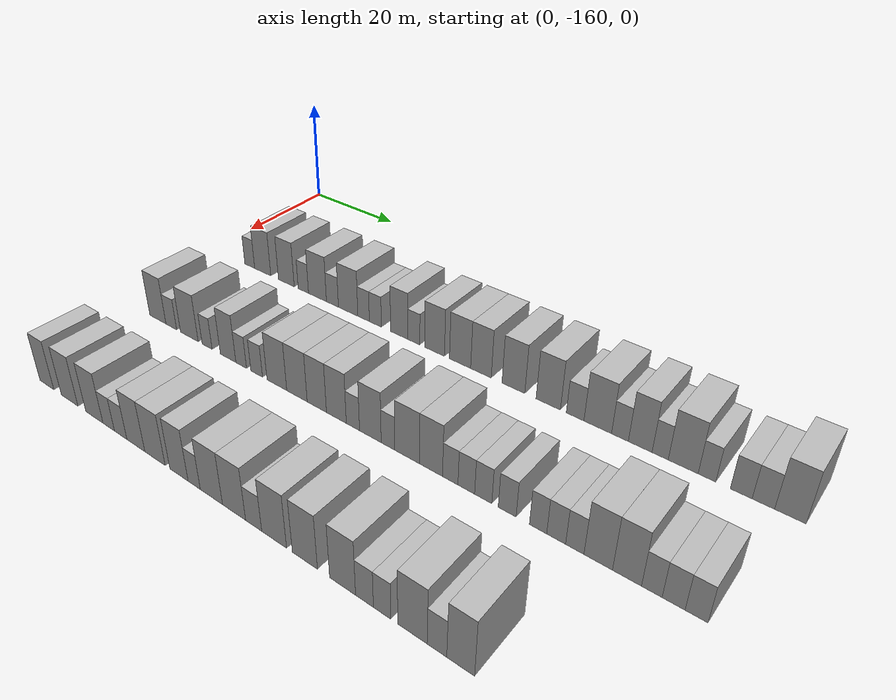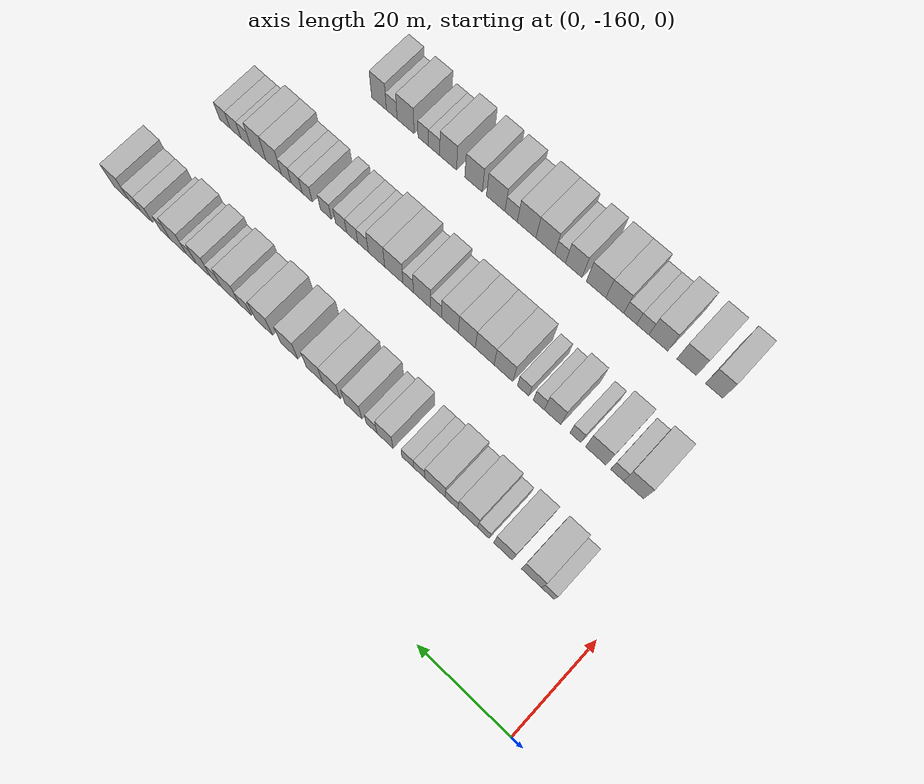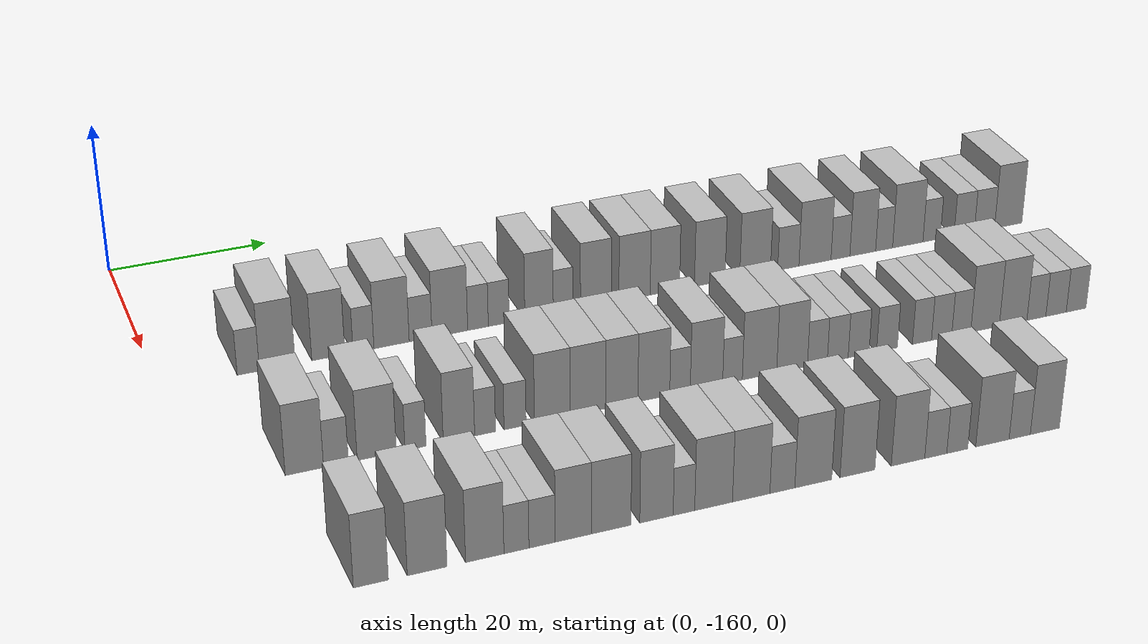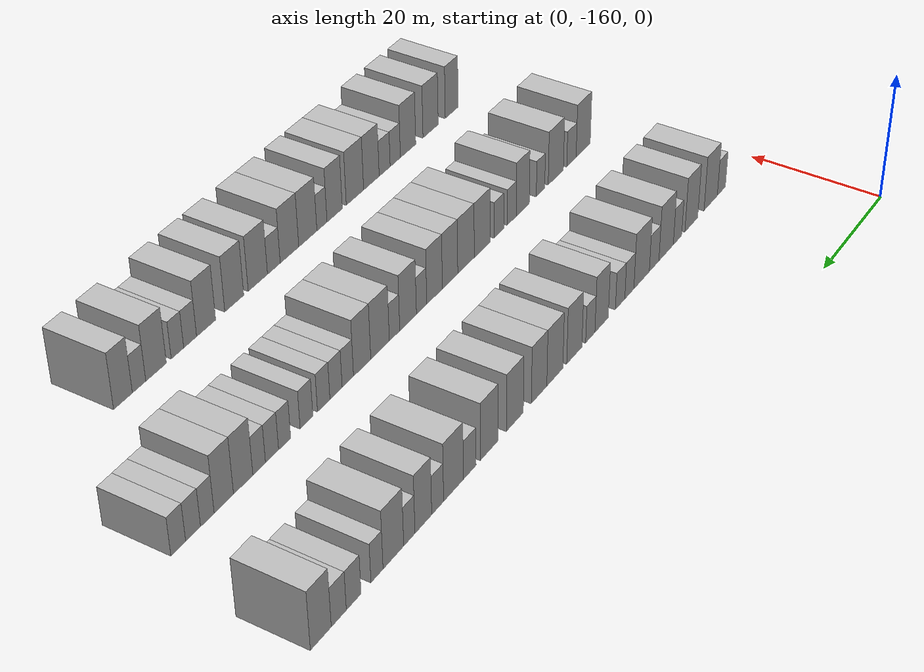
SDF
<sdf version="1.6">
 <world name="default">
  <model name="building_25">
   <static>1</static>
   <pose>25.0000 -149.6056 0 0.000000 0.000000 0.000000</pose>
   <link name="link">
    <pose>0 0 3.00 0 0 0</pose>
    <collision name="collision"><geometry><box><size>10.0000 2.6451 6.0000</size></box></geometry></collision>
    <visual name="visual">
     <cast_shadows>0</cast_shadows>
     <geometry><box><size>10.0000 2.6451 6.0000</size></box></geometry>
     <material>
      <script>
       <uri>model://HANNAS_wall/materials/scripts</uri>
       <uri>model://HANNAS_wall/materials/textures</uri>
       <name>vrc/HANNAS_wall</name>
      </script>
     </material>
    </visual>
   </link>
  </model>
  <model name="building_26">
   <static>1</static>
   <pose>25.0000 -146.1416 0 0.000000 0.000000 0.000000</pose>
   <link name="link">
    <pose>0 0 4.50 0 0 0</pose>
    <collision name="collision"><geometry><box><size>10.0000 4.2828 9.0000</size></box></geometry></collision>
    <visual name="visual">
     <cast_shadows>0</cast_shadows>
     <geometry><box><size>10.0000 4.2828 9.0000</size></box></geometry>
     <material>
      <script>
       <uri>model://HANNAS_wall/materials/scripts</uri>
       <uri>model://HANNAS_wall/materials/textures</uri>
       <name>vrc/HANNAS_wall</name>
      </script>
     </material>
    </visual>
   </link>
  </model>
  <model name="building_27">
   <static>1</static>
   <pose>25.0000 -139.9918 0 0.000000 0.000000 0.000000</pose>
   <link name="link">
    <pose>0 0 4.50 0 0 0</pose>
    <collision name="collision"><geometry><box><size>10.0000 4.0168 9.0000</size></box></geometry></collision>
    <visual name="visual">
     <cast_shadows>0</cast_shadows>
     <geometry><box><size>10.0000 4.0168 9.0000</size></box></geometry>
     <material>
      <script>
       <uri>model://HANNAS_wall/materials/scripts</uri>
       <uri>model://HANNAS_wall/materials/textures</uri>
       <name>vrc/HANNAS_wall</name>
      </script>
     </material>
    </visual>
   </link>
  </model>
  <model name="building_28">
   <static>1</static>
   <pose>25.0000 -135.7068 0 0.000000 0.000000 0.000000</pose>
   <link name="link">
    <pose>0 0 3.00 0 0 0</pose>
    <collision name="collision"><geometry><box><size>10.0000 2.5531 6.0000</size></box></geometry></collision>
    <visual name="visual">
     <cast_shadows>0</cast_shadows>
     <geometry><box><size>10.0000 2.5531 6.0000</size></box></geometry>
     <material>
      <script>
       <uri>model://HANNAS_wall/materials/scripts</uri>
       <uri>model://HANNAS_wall/materials/textures</uri>
       <name>vrc/HANNAS_wall</name>
      </script>
     </material>
    </visual>
   </link>
  </model>
  <model name="building_29">
   <static>1</static>
   <pose>25.0000 -132.2514 0 0.000000 0.000000 0.000000</pose>
   <link name="link">
    <pose>0 0 4.50 0 0 0</pose>
    <collision name="collision"><geometry><box><size>10.0000 4.3577 9.0000</size></box></geometry></collision>
    <visual name="visual">
     <cast_shadows>0</cast_shadows>
     <geometry><box><size>10.0000 4.3577 9.0000</size></box></geometry>
     <material>
      <script>
       <uri>model://HANNAS_wall/materials/scripts</uri>
       <uri>model://HANNAS_wall/materials/textures</uri>
       <name>vrc/HANNAS_wall</name>
      </script>
     </material>
    </visual>
   </link>
  </model>
  <model name="building_30">
   <static>1</static>
   <pose>25.0000 -128.6530 0 0.000000 0.000000 0.000000</pose>
   <link name="link">
    <pose>0 0 3.00 0 0 0</pose>
    <collision name="collision"><geometry><box><size>10.0000 2.8391 6.0000</size></box></geometry></collision>
    <visual name="visual">
     <cast_shadows>0</cast_shadows>
     <geometry><box><size>10.0000 2.8391 6.0000</size></box></geometry>
     <material>
      <script>
       <uri>model://HANNAS_wall/materials/scripts</uri>
       <uri>model://HANNAS_wall/materials/textures</uri>
       <name>vrc/HANNAS_wall</name>
      </script>
     </material>
    </visual>
   </link>
  </model>
  <model name="building_31">
   <static>1</static>
   <pose>25.0000 -124.9932 0 0.000000 0.000000 0.000000</pose>
   <link name="link">
    <pose>0 0 4.50 0 0 0</pose>
    <collision name="collision"><geometry><box><size>10.0000 4.4804 9.0000</size></box></geometry></collision>
    <visual name="visual">
     <cast_shadows>0</cast_shadows>
     <geometry><box><size>10.0000 4.4804 9.0000</size></box></geometry>
     <material>
      <script>
       <uri>model://HANNAS_wall/materials/scripts</uri>
       <uri>model://HANNAS_wall/materials/textures</uri>
       <name>vrc/HANNAS_wall</name>
      </script>
     </material>
    </visual>
   </link>
  </model>
  <model name="building_32">
   <static>1</static>
   <pose>25.0000 -121.4508 0 0.000000 0.000000 0.000000</pose>
   <link name="link">
    <pose>0 0 3.00 0 0 0</pose>
    <collision name="collision"><geometry><box><size>10.0000 2.6044 6.0000</size></box></geometry></collision>
    <visual name="visual">
     <cast_shadows>0</cast_shadows>
     <geometry><box><size>10.0000 2.6044 6.0000</size></box></geometry>
     <material>
      <script>
       <uri>model://HANNAS_wall/materials/scripts</uri>
       <uri>model://HANNAS_wall/materials/textures</uri>
       <name>vrc/HANNAS_wall</name>
      </script>
     </material>
    </visual>
   </link>
  </model>
  <model name="building_33">
   <static>1</static>
   <pose>25.0000 -118.8197 0 0.000000 0.000000 0.000000</pose>
   <link name="link">
    <pose>0 0 3.00 0 0 0</pose>
    <collision name="collision"><geometry><box><size>10.0000 2.6577 6.0000</size></box></geometry></collision>
    <visual name="visual">
     <cast_shadows>0</cast_shadows>
     <geometry><box><size>10.0000 2.6577 6.0000</size></box></geometry>
     <material>
      <script>
       <uri>model://HANNAS_wall/materials/scripts</uri>
       <uri>model://HANNAS_wall/materials/textures</uri>
       <name>vrc/HANNAS_wall</name>
      </script>
     </material>
    </visual>
   </link>
  </model>
  <model name="building_34">
   <static>1</static>
   <pose>25.0000 -113.6580 0 0.000000 0.000000 0.000000</pose>
   <link name="link">
    <pose>0 0 4.50 0 0 0</pose>
    <collision name="collision"><geometry><box><size>10.0000 3.6656 9.0000</size></box></geometry></collision>
    <visual name="visual">
     <cast_shadows>0</cast_shadows>
     <geometry><box><size>10.0000 3.6656 9.0000</size></box></geometry>
     <material>
      <script>
       <uri>model://HANNAS_wall/materials/scripts</uri>
       <uri>model://HANNAS_wall/materials/textures</uri>
       <name>vrc/HANNAS_wall</name>
      </script>
     </material>
    </visual>
   </link>
  </model>
  <model name="building_35">
   <static>1</static>
   <pose>25.0000 -110.5635 0 0.000000 0.000000 0.000000</pose>
   <link name="link">
    <pose>0 0 3.00 0 0 0</pose>
    <collision name="collision"><geometry><box><size>10.0000 2.5234 6.0000</size></box></geometry></collision>
    <visual name="visual">
     <cast_shadows>0</cast_shadows>
     <geometry><box><size>10.0000 2.5234 6.0000</size></box></geometry>
     <material>
      <script>
       <uri>model://HANNAS_wall/materials/scripts</uri>
       <uri>model://HANNAS_wall/materials/textures</uri>
       <name>vrc/HANNAS_wall</name>
      </script>
     </material>
    </visual>
   </link>
  </model>
  <model name="building_36">
   <static>1</static>
   <pose>25.0000 -106.2881 0 0.000000 0.000000 0.000000</pose>
   <link name="link">
    <pose>0 0 4.50 0 0 0</pose>
    <collision name="collision"><geometry><box><size>10.0000 4.0274 9.0000</size></box></geometry></collision>
    <visual name="visual">
     <cast_shadows>0</cast_shadows>
     <geometry><box><size>10.0000 4.0274 9.0000</size></box></geometry>
     <material>
      <script>
       <uri>model://HANNAS_wall/materials/scripts</uri>
       <uri>model://HANNAS_wall/materials/textures</uri>
       <name>vrc/HANNAS_wall</name>
      </script>
     </material>
    </visual>
   </link>
  </model>
  <model name="building_37">
   <static>1</static>
   <pose>25.0000 -101.2029 0 0.000000 0.000000 0.000000</pose>
   <link name="link">
    <pose>0 0 4.50 0 0 0</pose>
    <collision name="collision"><geometry><box><size>10.0000 4.1431 9.0000</size></box></geometry></collision>
    <visual name="visual">
     <cast_shadows>0</cast_shadows>
     <geometry><box><size>10.0000 4.1431 9.0000</size></box></geometry>
     <material>
      <script>
       <uri>model://HANNAS_wall/materials/scripts</uri>
       <uri>model://HANNAS_wall/materials/textures</uri>
       <name>vrc/HANNAS_wall</name>
      </script>
     </material>
    </visual>
   </link>
  </model>
  <model name="building_38">
   <static>1</static>
   <pose>25.0000 -97.1764 0 0.000000 0.000000 0.000000</pose>
   <link name="link">
    <pose>0 0 4.50 0 0 0</pose>
    <collision name="collision"><geometry><box><size>10.0000 3.9100 9.0000</size></box></geometry></collision>
    <visual name="visual">
     <cast_shadows>0</cast_shadows>
     <geometry><box><size>10.0000 3.9100 9.0000</size></box></geometry>
     <material>
      <script>
       <uri>model://HANNAS_wall/materials/scripts</uri>
       <uri>model://HANNAS_wall/materials/textures</uri>
       <name>vrc/HANNAS_wall</name>
      </script>
     </material>
    </visual>
   </link>
  </model>
  <model name="building_39">
   <static>1</static>
   <pose>25.0000 -91.1559 0 0.000000 0.000000 0.000000</pose>
   <link name="link">
    <pose>0 0 4.50 0 0 0</pose>
    <collision name="collision"><geometry><box><size>10.0000 4.1311 9.0000</size></box></geometry></collision>
    <visual name="visual">
     <cast_shadows>0</cast_shadows>
     <geometry><box><size>10.0000 4.1311 9.0000</size></box></geometry>
     <material>
      <script>
       <uri>model://HANNAS_wall/materials/scripts</uri>
       <uri>model://HANNAS_wall/materials/textures</uri>
       <name>vrc/HANNAS_wall</name>
      </script>
     </material>
    </visual>
   </link>
  </model>
  <model name="building_40">
   <static>1</static>
   <pose>25.0000 -84.9895 0 0.000000 0.000000 0.000000</pose>
   <link name="link">
    <pose>0 0 4.50 0 0 0</pose>
    <collision name="collision"><geometry><box><size>10.0000 4.2017 9.0000</size></box></geometry></collision>
    <visual name="visual">
     <cast_shadows>0</cast_shadows>
     <geometry><box><size>10.0000 4.2017 9.0000</size></box></geometry>
     <material>
      <script>
       <uri>model://HANNAS_wall/materials/scripts</uri>
       <uri>model://HANNAS_wall/materials/textures</uri>
       <name>vrc/HANNAS_wall</name>
      </script>
     </material>
    </visual>
   </link>
  </model>
  <model name="building_41">
   <static>1</static>
   <pose>25.0000 -80.4200 0 0.000000 0.000000 0.000000</pose>
   <link name="link">
    <pose>0 0 3.00 0 0 0</pose>
    <collision name="collision"><geometry><box><size>10.0000 2.9372 6.0000</size></box></geometry></collision>
    <visual name="visual">
     <cast_shadows>0</cast_shadows>
     <geometry><box><size>10.0000 2.9372 6.0000</size></box></geometry>
     <material>
      <script>
       <uri>model://HANNAS_wall/materials/scripts</uri>
       <uri>model://HANNAS_wall/materials/textures</uri>
       <name>vrc/HANNAS_wall</name>
      </script>
     </material>
    </visual>
   </link>
  </model>
  <model name="building_42">
   <static>1</static>
   <pose>25.0000 -76.7162 0 0.000000 0.000000 0.000000</pose>
   <link name="link">
    <pose>0 0 4.50 0 0 0</pose>
    <collision name="collision"><geometry><box><size>10.0000 4.4703 9.0000</size></box></geometry></collision>
    <visual name="visual">
     <cast_shadows>0</cast_shadows>
     <geometry><box><size>10.0000 4.4703 9.0000</size></box></geometry>
     <material>
      <script>
       <uri>model://HANNAS_wall/materials/scripts</uri>
       <uri>model://HANNAS_wall/materials/textures</uri>
       <name>vrc/HANNAS_wall</name>
      </script>
     </material>
    </visual>
   </link>
  </model>
  <model name="building_43">
   <static>1</static>
   <pose>25.0000 -73.1607 0 0.000000 0.000000 0.000000</pose>
   <link name="link">
    <pose>0 0 3.00 0 0 0</pose>
    <collision name="collision"><geometry><box><size>10.0000 2.6408 6.0000</size></box></geometry></collision>
    <visual name="visual">
     <cast_shadows>0</cast_shadows>
     <geometry><box><size>10.0000 2.6408 6.0000</size></box></geometry>
     <material>
      <script>
       <uri>model://HANNAS_wall/materials/scripts</uri>
       <uri>model://HANNAS_wall/materials/textures</uri>
       <name>vrc/HANNAS_wall</name>
      </script>
     </material>
    </visual>
   </link>
  </model>
  <model name="building_44">
   <static>1</static>
   <pose>25.0000 -70.0199 0 0.000000 0.000000 0.000000</pose>
   <link name="link">
    <pose>0 0 4.50 0 0 0</pose>
    <collision name="collision"><geometry><box><size>10.0000 3.6407 9.0000</size></box></geometry></collision>
    <visual name="visual">
     <cast_shadows>0</cast_shadows>
     <geometry><box><size>10.0000 3.6407 9.0000</size></box></geometry>
     <material>
      <script>
       <uri>model://HANNAS_wall/materials/scripts</uri>
       <uri>model://HANNAS_wall/materials/textures</uri>
       <name>vrc/HANNAS_wall</name>
      </script>
     </material>
    </visual>
   </link>
  </model>
  <model name="building_45">
   <static>1</static>
   <pose>25.0000 -66.9925 0 0.000000 0.000000 0.000000</pose>
   <link name="link">
    <pose>0 0 3.00 0 0 0</pose>
    <collision name="collision"><geometry><box><size>10.0000 2.4140 6.0000</size></box></geometry></collision>
    <visual name="visual">
     <cast_shadows>0</cast_shadows>
     <geometry><box><size>10.0000 2.4140 6.0000</size></box></geometry>
     <material>
      <script>
       <uri>model://HANNAS_wall/materials/scripts</uri>
       <uri>model://HANNAS_wall/materials/textures</uri>
       <name>vrc/HANNAS_wall</name>
      </script>
     </material>
    </visual>
   </link>
  </model>
  <model name="building_46">
   <static>1</static>
   <pose>25.0000 -63.6150 0 0.000000 0.000000 0.000000</pose>
   <link name="link">
    <pose>0 0 4.50 0 0 0</pose>
    <collision name="collision"><geometry><box><size>10.0000 4.3411 9.0000</size></box></geometry></collision>
    <visual name="visual">
     <cast_shadows>0</cast_shadows>
     <geometry><box><size>10.0000 4.3411 9.0000</size></box></geometry>
     <material>
      <script>
       <uri>model://HANNAS_wall/materials/scripts</uri>
       <uri>model://HANNAS_wall/materials/textures</uri>
       <name>vrc/HANNAS_wall</name>
      </script>
     </material>
    </visual>
   </link>
  </model>
  <model name="building_47">
   <static>1</static>
   <pose>25.0000 -60.1964 0 0.000000 0.000000 0.000000</pose>
   <link name="link">
    <pose>0 0 3.00 0 0 0</pose>
    <collision name="collision"><geometry><box><size>10.0000 2.4961 6.0000</size></box></geometry></collision>
    <visual name="visual">
     <cast_shadows>0</cast_shadows>
     <geometry><box><size>10.0000 2.4961 6.0000</size></box></geometry>
     <material>
      <script>
       <uri>model://HANNAS_wall/materials/scripts</uri>
       <uri>model://HANNAS_wall/materials/textures</uri>
       <name>vrc/HANNAS_wall</name>
      </script>
     </material>
    </visual>
   </link>
  </model>
  <model name="building_48">
   <static>1</static>
   <pose>25.0000 -55.4703 0 0.000000 0.000000 0.000000</pose>
   <link name="link">
    <pose>0 0 3.00 0 0 0</pose>
    <collision name="collision"><geometry><box><size>10.0000 2.9560 6.0000</size></box></geometry></collision>
    <visual name="visual">
     <cast_shadows>0</cast_shadows>
     <geometry><box><size>10.0000 2.9560 6.0000</size></box></geometry>
     <material>
      <script>
       <uri>model://HANNAS_wall/materials/scripts</uri>
       <uri>model://HANNAS_wall/materials/textures</uri>
       <name>vrc/HANNAS_wall</name>
      </script>
     </material>
    </visual>
   </link>
  </model>
  <model name="building_49">
   <static>1</static>
   <pose>25.0000 -52.5122 0 0.000000 0.000000 0.000000</pose>
   <link name="link">
    <pose>0 0 3.00 0 0 0</pose>
    <collision name="collision"><geometry><box><size>10.0000 2.9602 6.0000</size></box></geometry></collision>
    <visual name="visual">
     <cast_shadows>0</cast_shadows>
     <geometry><box><size>10.0000 2.9602 6.0000</size></box></geometry>
     <material>
      <script>
       <uri>model://HANNAS_wall/materials/scripts</uri>
       <uri>model://HANNAS_wall/materials/textures</uri>
       <name>vrc/HANNAS_wall</name>
      </script>
     </material>
    </visual>
   </link>
  </model>
  <model name="building_50">
   <static>1</static>
   <pose>25.0000 -49.0144 0 0.000000 0.000000 0.000000</pose>
   <link name="link">
    <pose>0 0 4.50 0 0 0</pose>
    <collision name="collision"><geometry><box><size>10.0000 4.0354 9.0000</size></box></geometry></collision>
    <visual name="visual">
     <cast_shadows>0</cast_shadows>
     <geometry><box><size>10.0000 4.0354 9.0000</size></box></geometry>
     <material>
      <script>
       <uri>model://HANNAS_wall/materials/scripts</uri>
       <uri>model://HANNAS_wall/materials/textures</uri>
       <name>vrc/HANNAS_wall</name>
      </script>
     </material>
    </visual>
   </link>
  </model>
  <model name="building_146">
   <static>1</static>
   <pose>47.0000 -148.8023 0 0.000000 0.000000 0.000000</pose>
   <link name="link">
    <pose>0 0 4.50 0 0 0</pose>
    <collision name="collision"><geometry><box><size>10.0000 4.2984 9.0000</size></box></geometry></collision>
    <visual name="visual">
     <cast_shadows>0</cast_shadows>
     <geometry><box><size>10.0000 4.2984 9.0000</size></box></geometry>
     <material>
      <script>
       <uri>model://HANNAS_wall/materials/scripts</uri>
       <uri>model://HANNAS_wall/materials/textures</uri>
       <name>vrc/HANNAS_wall</name>
      </script>
     </material>
    </visual>
   </link>
  </model>
  <model name="building_147">
   <static>1</static>
   <pose>47.0000 -145.2517 0 0.000000 0.000000 0.000000</pose>
   <link name="link">
    <pose>0 0 3.00 0 0 0</pose>
    <collision name="collision"><geometry><box><size>10.0000 2.8029 6.0000</size></box></geometry></collision>
    <visual name="visual">
     <cast_shadows>0</cast_shadows>
     <geometry><box><size>10.0000 2.8029 6.0000</size></box></geometry>
     <material>
      <script>
       <uri>model://HANNAS_wall/materials/scripts</uri>
       <uri>model://HANNAS_wall/materials/textures</uri>
       <name>vrc/HANNAS_wall</name>
      </script>
     </material>
    </visual>
   </link>
  </model>
  <model name="building_148">
   <static>1</static>
   <pose>47.0000 -140.6141 0 0.000000 0.000000 0.000000</pose>
   <link name="link">
    <pose>0 0 4.50 0 0 0</pose>
    <collision name="collision"><geometry><box><size>10.0000 4.4722 9.0000</size></box></geometry></collision>
    <visual name="visual">
     <cast_shadows>0</cast_shadows>
     <geometry><box><size>10.0000 4.4722 9.0000</size></box></geometry>
     <material>
      <script>
       <uri>model://HANNAS_wall/materials/scripts</uri>
       <uri>model://HANNAS_wall/materials/textures</uri>
       <name>vrc/HANNAS_wall</name>
      </script>
     </material>
    </visual>
   </link>
  </model>
  <model name="building_149">
   <static>1</static>
   <pose>47.0000 -136.1656 0 0.000000 0.000000 0.000000</pose>
   <link name="link">
    <pose>0 0 3.00 0 0 0</pose>
    <collision name="collision"><geometry><box><size>10.0000 2.4248 6.0000</size></box></geometry></collision>
    <visual name="visual">
     <cast_shadows>0</cast_shadows>
     <geometry><box><size>10.0000 2.4248 6.0000</size></box></geometry>
     <material>
      <script>
       <uri>model://HANNAS_wall/materials/scripts</uri>
       <uri>model://HANNAS_wall/materials/textures</uri>
       <name>vrc/HANNAS_wall</name>
      </script>
     </material>
    </visual>
   </link>
  </model>
  <model name="building_150">
   <static>1</static>
   <pose>47.0000 -131.1183 0 0.000000 0.000000 0.000000</pose>
   <link name="link">
    <pose>0 0 4.50 0 0 0</pose>
    <collision name="collision"><geometry><box><size>10.0000 3.6699 9.0000</size></box></geometry></collision>
    <visual name="visual">
     <cast_shadows>0</cast_shadows>
     <geometry><box><size>10.0000 3.6699 9.0000</size></box></geometry>
     <material>
      <script>
       <uri>model://HANNAS_wall/materials/scripts</uri>
       <uri>model://HANNAS_wall/materials/textures</uri>
       <name>vrc/HANNAS_wall</name>
      </script>
     </material>
    </visual>
   </link>
  </model>
  <model name="building_151">
   <static>1</static>
   <pose>47.0000 -128.0526 0 0.000000 0.000000 0.000000</pose>
   <link name="link">
    <pose>0 0 3.00 0 0 0</pose>
    <collision name="collision"><geometry><box><size>10.0000 2.4615 6.0000</size></box></geometry></collision>
    <visual name="visual">
     <cast_shadows>0</cast_shadows>
     <geometry><box><size>10.0000 2.4615 6.0000</size></box></geometry>
     <material>
      <script>
       <uri>model://HANNAS_wall/materials/scripts</uri>
       <uri>model://HANNAS_wall/materials/textures</uri>
       <name>vrc/HANNAS_wall</name>
      </script>
     </material>
    </visual>
   </link>
  </model>
  <model name="building_152">
   <static>1</static>
   <pose>47.0000 -124.5123 0 0.000000 0.000000 0.000000</pose>
   <link name="link">
    <pose>0 0 3.00 0 0 0</pose>
    <collision name="collision"><geometry><box><size>10.0000 2.6191 6.0000</size></box></geometry></collision>
    <visual name="visual">
     <cast_shadows>0</cast_shadows>
     <geometry><box><size>10.0000 2.6191 6.0000</size></box></geometry>
     <material>
      <script>
       <uri>model://HANNAS_wall/materials/scripts</uri>
       <uri>model://HANNAS_wall/materials/textures</uri>
       <name>vrc/HANNAS_wall</name>
      </script>
     </material>
    </visual>
   </link>
  </model>
  <model name="building_153">
   <static>1</static>
   <pose>47.0000 -120.0565 0 0.000000 0.000000 0.000000</pose>
   <link name="link">
    <pose>0 0 4.50 0 0 0</pose>
    <collision name="collision"><geometry><box><size>10.0000 4.2924 9.0000</size></box></geometry></collision>
    <visual name="visual">
     <cast_shadows>0</cast_shadows>
     <geometry><box><size>10.0000 4.2924 9.0000</size></box></geometry>
     <material>
      <script>
       <uri>model://HANNAS_wall/materials/scripts</uri>
       <uri>model://HANNAS_wall/materials/textures</uri>
       <name>vrc/HANNAS_wall</name>
      </script>
     </material>
    </visual>
   </link>
  </model>
  <model name="building_154">
   <static>1</static>
   <pose>47.0000 -115.7565 0 0.000000 0.000000 0.000000</pose>
   <link name="link">
    <pose>0 0 4.50 0 0 0</pose>
    <collision name="collision"><geometry><box><size>10.0000 4.3077 9.0000</size></box></geometry></collision>
    <visual name="visual">
     <cast_shadows>0</cast_shadows>
     <geometry><box><size>10.0000 4.3077 9.0000</size></box></geometry>
     <material>
      <script>
       <uri>model://HANNAS_wall/materials/scripts</uri>
       <uri>model://HANNAS_wall/materials/textures</uri>
       <name>vrc/HANNAS_wall</name>
      </script>
     </material>
    </visual>
   </link>
  </model>
  <model name="building_155">
   <static>1</static>
   <pose>47.0000 -111.6367 0 0.000000 0.000000 0.000000</pose>
   <link name="link">
    <pose>0 0 4.50 0 0 0</pose>
    <collision name="collision"><geometry><box><size>10.0000 3.9319 9.0000</size></box></geometry></collision>
    <visual name="visual">
     <cast_shadows>0</cast_shadows>
     <geometry><box><size>10.0000 3.9319 9.0000</size></box></geometry>
     <material>
      <script>
       <uri>model://HANNAS_wall/materials/scripts</uri>
       <uri>model://HANNAS_wall/materials/textures</uri>
       <name>vrc/HANNAS_wall</name>
      </script>
     </material>
    </visual>
   </link>
  </model>
  <model name="building_156">
   <static>1</static>
   <pose>47.0000 -107.7082 0 0.000000 0.000000 0.000000</pose>
   <link name="link">
    <pose>0 0 4.50 0 0 0</pose>
    <collision name="collision"><geometry><box><size>10.0000 3.9251 9.0000</size></box></geometry></collision>
    <visual name="visual">
     <cast_shadows>0</cast_shadows>
     <geometry><box><size>10.0000 3.9251 9.0000</size></box></geometry>
     <material>
      <script>
       <uri>model://HANNAS_wall/materials/scripts</uri>
       <uri>model://HANNAS_wall/materials/textures</uri>
       <name>vrc/HANNAS_wall</name>
      </script>
     </material>
    </visual>
   </link>
  </model>
  <model name="building_157">
   <static>1</static>
   <pose>47.0000 -104.4693 0 0.000000 0.000000 0.000000</pose>
   <link name="link">
    <pose>0 0 3.00 0 0 0</pose>
    <collision name="collision"><geometry><box><size>10.0000 2.5528 6.0000</size></box></geometry></collision>
    <visual name="visual">
     <cast_shadows>0</cast_shadows>
     <geometry><box><size>10.0000 2.5528 6.0000</size></box></geometry>
     <material>
      <script>
       <uri>model://HANNAS_wall/materials/scripts</uri>
       <uri>model://HANNAS_wall/materials/textures</uri>
       <name>vrc/HANNAS_wall</name>
      </script>
     </material>
    </visual>
   </link>
  </model>
  <model name="building_158">
   <static>1</static>
   <pose>47.0000 -101.1640 0 0.000000 0.000000 0.000000</pose>
   <link name="link">
    <pose>0 0 4.50 0 0 0</pose>
    <collision name="collision"><geometry><box><size>10.0000 4.0578 9.0000</size></box></geometry></collision>
    <visual name="visual">
     <cast_shadows>0</cast_shadows>
     <geometry><box><size>10.0000 4.0578 9.0000</size></box></geometry>
     <material>
      <script>
       <uri>model://HANNAS_wall/materials/scripts</uri>
       <uri>model://HANNAS_wall/materials/textures</uri>
       <name>vrc/HANNAS_wall</name>
      </script>
     </material>
    </visual>
   </link>
  </model>
  <model name="building_159">
   <static>1</static>
   <pose>47.0000 -97.8921 0 0.000000 0.000000 0.000000</pose>
   <link name="link">
    <pose>0 0 3.00 0 0 0</pose>
    <collision name="collision"><geometry><box><size>10.0000 2.4860 6.0000</size></box></geometry></collision>
    <visual name="visual">
     <cast_shadows>0</cast_shadows>
     <geometry><box><size>10.0000 2.4860 6.0000</size></box></geometry>
     <material>
      <script>
       <uri>model://HANNAS_wall/materials/scripts</uri>
       <uri>model://HANNAS_wall/materials/textures</uri>
       <name>vrc/HANNAS_wall</name>
      </script>
     </material>
    </visual>
   </link>
  </model>
  <model name="building_160">
   <static>1</static>
   <pose>47.0000 -94.4669 0 0.000000 0.000000 0.000000</pose>
   <link name="link">
    <pose>0 0 4.50 0 0 0</pose>
    <collision name="collision"><geometry><box><size>10.0000 4.3646 9.0000</size></box></geometry></collision>
    <visual name="visual">
     <cast_shadows>0</cast_shadows>
     <geometry><box><size>10.0000 4.3646 9.0000</size></box></geometry>
     <material>
      <script>
       <uri>model://HANNAS_wall/materials/scripts</uri>
       <uri>model://HANNAS_wall/materials/textures</uri>
       <name>vrc/HANNAS_wall</name>
      </script>
     </material>
    </visual>
   </link>
  </model>
  <model name="building_161">
   <static>1</static>
   <pose>47.0000 -90.3044 0 0.000000 0.000000 0.000000</pose>
   <link name="link">
    <pose>0 0 4.50 0 0 0</pose>
    <collision name="collision"><geometry><box><size>10.0000 3.9604 9.0000</size></box></geometry></collision>
    <visual name="visual">
     <cast_shadows>0</cast_shadows>
     <geometry><box><size>10.0000 3.9604 9.0000</size></box></geometry>
     <material>
      <script>
       <uri>model://HANNAS_wall/materials/scripts</uri>
       <uri>model://HANNAS_wall/materials/textures</uri>
       <name>vrc/HANNAS_wall</name>
      </script>
     </material>
    </visual>
   </link>
  </model>
  <model name="building_162">
   <static>1</static>
   <pose>47.0000 -87.0386 0 0.000000 0.000000 0.000000</pose>
   <link name="link">
    <pose>0 0 3.00 0 0 0</pose>
    <collision name="collision"><geometry><box><size>10.0000 2.5711 6.0000</size></box></geometry></collision>
    <visual name="visual">
     <cast_shadows>0</cast_shadows>
     <geometry><box><size>10.0000 2.5711 6.0000</size></box></geometry>
     <material>
      <script>
       <uri>model://HANNAS_wall/materials/scripts</uri>
       <uri>model://HANNAS_wall/materials/textures</uri>
       <name>vrc/HANNAS_wall</name>
      </script>
     </material>
    </visual>
   </link>
  </model>
  <model name="building_163">
   <static>1</static>
   <pose>47.0000 -84.3933 0 0.000000 0.000000 0.000000</pose>
   <link name="link">
    <pose>0 0 3.00 0 0 0</pose>
    <collision name="collision"><geometry><box><size>10.0000 2.7194 6.0000</size></box></geometry></collision>
    <visual name="visual">
     <cast_shadows>0</cast_shadows>
     <geometry><box><size>10.0000 2.7194 6.0000</size></box></geometry>
     <material>
      <script>
       <uri>model://HANNAS_wall/materials/scripts</uri>
       <uri>model://HANNAS_wall/materials/textures</uri>
       <name>vrc/HANNAS_wall</name>
      </script>
     </material>
    </visual>
   </link>
  </model>
  <model name="building_164">
   <static>1</static>
   <pose>47.0000 -81.6680 0 0.000000 0.000000 0.000000</pose>
   <link name="link">
    <pose>0 0 3.00 0 0 0</pose>
    <collision name="collision"><geometry><box><size>10.0000 2.7313 6.0000</size></box></geometry></collision>
    <visual name="visual">
     <cast_shadows>0</cast_shadows>
     <geometry><box><size>10.0000 2.7313 6.0000</size></box></geometry>
     <material>
      <script>
       <uri>model://HANNAS_wall/materials/scripts</uri>
       <uri>model://HANNAS_wall/materials/textures</uri>
       <name>vrc/HANNAS_wall</name>
      </script>
     </material>
    </visual>
   </link>
  </model>
  <model name="building_165">
   <static>1</static>
   <pose>47.0000 -77.9268 0 0.000000 0.000000 0.000000</pose>
   <link name="link">
    <pose>0 0 3.00 0 0 0</pose>
    <collision name="collision"><geometry><box><size>10.0000 2.7509 6.0000</size></box></geometry></collision>
    <visual name="visual">
     <cast_shadows>0</cast_shadows>
     <geometry><box><size>10.0000 2.7509 6.0000</size></box></geometry>
     <material>
      <script>
       <uri>model://HANNAS_wall/materials/scripts</uri>
       <uri>model://HANNAS_wall/materials/textures</uri>
       <name>vrc/HANNAS_wall</name>
      </script>
     </material>
    </visual>
   </link>
  </model>
  <model name="building_166">
   <static>1</static>
   <pose>47.0000 -73.2798 0 0.000000 0.000000 0.000000</pose>
   <link name="link">
    <pose>0 0 3.00 0 0 0</pose>
    <collision name="collision"><geometry><box><size>10.0000 2.5431 6.0000</size></box></geometry></collision>
    <visual name="visual">
     <cast_shadows>0</cast_shadows>
     <geometry><box><size>10.0000 2.5431 6.0000</size></box></geometry>
     <material>
      <script>
       <uri>model://HANNAS_wall/materials/scripts</uri>
       <uri>model://HANNAS_wall/materials/textures</uri>
       <name>vrc/HANNAS_wall</name>
      </script>
     </material>
    </visual>
   </link>
  </model>
  <model name="building_167">
   <static>1</static>
   <pose>47.0000 -70.6511 0 0.000000 0.000000 0.000000</pose>
   <link name="link">
    <pose>0 0 3.00 0 0 0</pose>
    <collision name="collision"><geometry><box><size>10.0000 2.7142 6.0000</size></box></geometry></collision>
    <visual name="visual">
     <cast_shadows>0</cast_shadows>
     <geometry><box><size>10.0000 2.7142 6.0000</size></box></geometry>
     <material>
      <script>
       <uri>model://HANNAS_wall/materials/scripts</uri>
       <uri>model://HANNAS_wall/materials/textures</uri>
       <name>vrc/HANNAS_wall</name>
      </script>
     </material>
    </visual>
   </link>
  </model>
  <model name="building_168">
   <static>1</static>
   <pose>47.0000 -68.0086 0 0.000000 0.000000 0.000000</pose>
   <link name="link">
    <pose>0 0 3.00 0 0 0</pose>
    <collision name="collision"><geometry><box><size>10.0000 2.5708 6.0000</size></box></geometry></collision>
    <visual name="visual">
     <cast_shadows>0</cast_shadows>
     <geometry><box><size>10.0000 2.5708 6.0000</size></box></geometry>
     <material>
      <script>
       <uri>model://HANNAS_wall/materials/scripts</uri>
       <uri>model://HANNAS_wall/materials/textures</uri>
       <name>vrc/HANNAS_wall</name>
      </script>
     </material>
    </visual>
   </link>
  </model>
  <model name="building_169">
   <static>1</static>
   <pose>47.0000 -64.7811 0 0.000000 0.000000 0.000000</pose>
   <link name="link">
    <pose>0 0 4.50 0 0 0</pose>
    <collision name="collision"><geometry><box><size>10.0000 3.8841 9.0000</size></box></geometry></collision>
    <visual name="visual">
     <cast_shadows>0</cast_shadows>
     <geometry><box><size>10.0000 3.8841 9.0000</size></box></geometry>
     <material>
      <script>
       <uri>model://HANNAS_wall/materials/scripts</uri>
       <uri>model://HANNAS_wall/materials/textures</uri>
       <name>vrc/HANNAS_wall</name>
      </script>
     </material>
    </visual>
   </link>
  </model>
  <model name="building_170">
   <static>1</static>
   <pose>47.0000 -60.9393 0 0.000000 0.000000 0.000000</pose>
   <link name="link">
    <pose>0 0 4.50 0 0 0</pose>
    <collision name="collision"><geometry><box><size>10.0000 3.7995 9.0000</size></box></geometry></collision>
    <visual name="visual">
     <cast_shadows>0</cast_shadows>
     <geometry><box><size>10.0000 3.7995 9.0000</size></box></geometry>
     <material>
      <script>
       <uri>model://HANNAS_wall/materials/scripts</uri>
       <uri>model://HANNAS_wall/materials/textures</uri>
       <name>vrc/HANNAS_wall</name>
      </script>
     </material>
    </visual>
   </link>
  </model>
  <model name="building_171">
   <static>1</static>
   <pose>47.0000 -57.7335 0 0.000000 0.000000 0.000000</pose>
   <link name="link">
    <pose>0 0 3.00 0 0 0</pose>
    <collision name="collision"><geometry><box><size>10.0000 2.6122 6.0000</size></box></geometry></collision>
    <visual name="visual">
     <cast_shadows>0</cast_shadows>
     <geometry><box><size>10.0000 2.6122 6.0000</size></box></geometry>
     <material>
      <script>
       <uri>model://HANNAS_wall/materials/scripts</uri>
       <uri>model://HANNAS_wall/materials/textures</uri>
       <name>vrc/HANNAS_wall</name>
      </script>
     </material>
    </visual>
   </link>
  </model>
  <model name="building_172">
   <static>1</static>
   <pose>47.0000 -55.0099 0 0.000000 0.000000 0.000000</pose>
   <link name="link">
    <pose>0 0 3.00 0 0 0</pose>
    <collision name="collision"><geometry><box><size>10.0000 2.8350 6.0000</size></box></geometry></collision>
    <visual name="visual">
     <cast_shadows>0</cast_shadows>
     <geometry><box><size>10.0000 2.8350 6.0000</size></box></geometry>
     <material>
      <script>
       <uri>model://HANNAS_wall/materials/scripts</uri>
       <uri>model://HANNAS_wall/materials/textures</uri>
       <name>vrc/HANNAS_wall</name>
      </script>
     </material>
    </visual>
   </link>
  </model>
  <model name="building_173">
   <static>1</static>
   <pose>47.0000 -52.2094 0 0.000000 0.000000 0.000000</pose>
   <link name="link">
    <pose>0 0 3.00 0 0 0</pose>
    <collision name="collision"><geometry><box><size>10.0000 2.7661 6.0000</size></box></geometry></collision>
    <visual name="visual">
     <cast_shadows>0</cast_shadows>
     <geometry><box><size>10.0000 2.7661 6.0000</size></box></geometry>
     <material>
      <script>
       <uri>model://HANNAS_wall/materials/scripts</uri>
       <uri>model://HANNAS_wall/materials/textures</uri>
       <name>vrc/HANNAS_wall</name>
      </script>
     </material>
    </visual>
   </link>
  </model>
  <model name="building_274">
   <static>1</static>
   <pose>69.0000 -147.7757 0 0.000000 0.000000 0.000000</pose>
   <link name="link">
    <pose>0 0 4.50 0 0 0</pose>
    <collision name="collision"><geometry><box><size>10.0000 3.6973 9.0000</size></box></geometry></collision>
    <visual name="visual">
     <cast_shadows>0</cast_shadows>
     <geometry><box><size>10.0000 3.6973 9.0000</size></box></geometry>
     <material>
      <script>
       <uri>model://HANNAS_wall/materials/scripts</uri>
       <uri>model://HANNAS_wall/materials/textures</uri>
       <name>vrc/HANNAS_wall</name>
      </script>
     </material>
    </visual>
   </link>
  </model>
  <model name="building_275">
   <static>1</static>
   <pose>69.0000 -141.8006 0 0.000000 0.000000 0.000000</pose>
   <link name="link">
    <pose>0 0 4.50 0 0 0</pose>
    <collision name="collision"><geometry><box><size>10.0000 4.2530 9.0000</size></box></geometry></collision>
    <visual name="visual">
     <cast_shadows>0</cast_shadows>
     <geometry><box><size>10.0000 4.2530 9.0000</size></box></geometry>
     <material>
      <script>
       <uri>model://HANNAS_wall/materials/scripts</uri>
       <uri>model://HANNAS_wall/materials/textures</uri>
       <name>vrc/HANNAS_wall</name>
      </script>
     </material>
    </visual>
   </link>
  </model>
  <model name="building_276">
   <static>1</static>
   <pose>69.0000 -135.5872 0 0.000000 0.000000 0.000000</pose>
   <link name="link">
    <pose>0 0 4.50 0 0 0</pose>
    <collision name="collision"><geometry><box><size>10.0000 4.1738 9.0000</size></box></geometry></collision>
    <visual name="visual">
     <cast_shadows>0</cast_shadows>
     <geometry><box><size>10.0000 4.1738 9.0000</size></box></geometry>
     <material>
      <script>
       <uri>model://HANNAS_wall/materials/scripts</uri>
       <uri>model://HANNAS_wall/materials/textures</uri>
       <name>vrc/HANNAS_wall</name>
      </script>
     </material>
    </visual>
   </link>
  </model>
  <model name="building_277">
   <static>1</static>
   <pose>69.0000 -132.1310 0 0.000000 0.000000 0.000000</pose>
   <link name="link">
    <pose>0 0 3.00 0 0 0</pose>
    <collision name="collision"><geometry><box><size>10.0000 2.7385 6.0000</size></box></geometry></collision>
    <visual name="visual">
     <cast_shadows>0</cast_shadows>
     <geometry><box><size>10.0000 2.7385 6.0000</size></box></geometry>
     <material>
      <script>
       <uri>model://HANNAS_wall/materials/scripts</uri>
       <uri>model://HANNAS_wall/materials/textures</uri>
       <name>vrc/HANNAS_wall</name>
      </script>
     </material>
    </visual>
   </link>
  </model>
  <model name="building_278">
   <static>1</static>
   <pose>69.0000 -129.3094 0 0.000000 0.000000 0.000000</pose>
   <link name="link">
    <pose>0 0 3.00 0 0 0</pose>
    <collision name="collision"><geometry><box><size>10.0000 2.9048 6.0000</size></box></geometry></collision>
    <visual name="visual">
     <cast_shadows>0</cast_shadows>
     <geometry><box><size>10.0000 2.9048 6.0000</size></box></geometry>
     <material>
      <script>
       <uri>model://HANNAS_wall/materials/scripts</uri>
       <uri>model://HANNAS_wall/materials/textures</uri>
       <name>vrc/HANNAS_wall</name>
      </script>
     </material>
    </visual>
   </link>
  </model>
  <model name="building_279">
   <static>1</static>
   <pose>69.0000 -125.8303 0 0.000000 0.000000 0.000000</pose>
   <link name="link">
    <pose>0 0 4.50 0 0 0</pose>
    <collision name="collision"><geometry><box><size>10.0000 4.0533 9.0000</size></box></geometry></collision>
    <visual name="visual">
     <cast_shadows>0</cast_shadows>
     <geometry><box><size>10.0000 4.0533 9.0000</size></box></geometry>
     <material>
      <script>
       <uri>model://HANNAS_wall/materials/scripts</uri>
       <uri>model://HANNAS_wall/materials/textures</uri>
       <name>vrc/HANNAS_wall</name>
      </script>
     </material>
    </visual>
   </link>
  </model>
  <model name="building_280">
   <static>1</static>
   <pose>69.0000 -121.5883 0 0.000000 0.000000 0.000000</pose>
   <link name="link">
    <pose>0 0 4.50 0 0 0</pose>
    <collision name="collision"><geometry><box><size>10.0000 4.4308 9.0000</size></box></geometry></collision>
    <visual name="visual">
     <cast_shadows>0</cast_shadows>
     <geometry><box><size>10.0000 4.4308 9.0000</size></box></geometry>
     <material>
      <script>
       <uri>model://HANNAS_wall/materials/scripts</uri>
       <uri>model://HANNAS_wall/materials/textures</uri>
       <name>vrc/HANNAS_wall</name>
      </script>
     </material>
    </visual>
   </link>
  </model>
  <model name="building_281">
   <static>1</static>
   <pose>69.0000 -116.4685 0 0.000000 0.000000 0.000000</pose>
   <link name="link">
    <pose>0 0 4.50 0 0 0</pose>
    <collision name="collision"><geometry><box><size>10.0000 3.8087 9.0000</size></box></geometry></collision>
    <visual name="visual">
     <cast_shadows>0</cast_shadows>
     <geometry><box><size>10.0000 3.8087 9.0000</size></box></geometry>
     <material>
      <script>
       <uri>model://HANNAS_wall/materials/scripts</uri>
       <uri>model://HANNAS_wall/materials/textures</uri>
       <name>vrc/HANNAS_wall</name>
      </script>
     </material>
    </visual>
   </link>
  </model>
  <model name="building_282">
   <static>1</static>
   <pose>69.0000 -113.3261 0 0.000000 0.000000 0.000000</pose>
   <link name="link">
    <pose>0 0 3.00 0 0 0</pose>
    <collision name="collision"><geometry><box><size>10.0000 2.4761 6.0000</size></box></geometry></collision>
    <visual name="visual">
     <cast_shadows>0</cast_shadows>
     <geometry><box><size>10.0000 2.4761 6.0000</size></box></geometry>
     <material>
      <script>
       <uri>model://HANNAS_wall/materials/scripts</uri>
       <uri>model://HANNAS_wall/materials/textures</uri>
       <name>vrc/HANNAS_wall</name>
      </script>
     </material>
    </visual>
   </link>
  </model>
  <model name="building_283">
   <static>1</static>
   <pose>69.0000 -109.8980 0 0.000000 0.000000 0.000000</pose>
   <link name="link">
    <pose>0 0 4.50 0 0 0</pose>
    <collision name="collision"><geometry><box><size>10.0000 4.3803 9.0000</size></box></geometry></collision>
    <visual name="visual">
     <cast_shadows>0</cast_shadows>
     <geometry><box><size>10.0000 4.3803 9.0000</size></box></geometry>
     <material>
      <script>
       <uri>model://HANNAS_wall/materials/scripts</uri>
       <uri>model://HANNAS_wall/materials/textures</uri>
       <name>vrc/HANNAS_wall</name>
      </script>
     </material>
    </visual>
   </link>
  </model>
  <model name="building_284">
   <static>1</static>
   <pose>69.0000 -105.5149 0 0.000000 0.000000 0.000000</pose>
   <link name="link">
    <pose>0 0 4.50 0 0 0</pose>
    <collision name="collision"><geometry><box><size>10.0000 4.3858 9.0000</size></box></geometry></collision>
    <visual name="visual">
     <cast_shadows>0</cast_shadows>
     <geometry><box><size>10.0000 4.3858 9.0000</size></box></geometry>
     <material>
      <script>
       <uri>model://HANNAS_wall/materials/scripts</uri>
       <uri>model://HANNAS_wall/materials/textures</uri>
       <name>vrc/HANNAS_wall</name>
      </script>
     </material>
    </visual>
   </link>
  </model>
  <model name="building_285">
   <static>1</static>
   <pose>69.0000 -101.8463 0 0.000000 0.000000 0.000000</pose>
   <link name="link">
    <pose>0 0 3.00 0 0 0</pose>
    <collision name="collision"><geometry><box><size>10.0000 2.9515 6.0000</size></box></geometry></collision>
    <visual name="visual">
     <cast_shadows>0</cast_shadows>
     <geometry><box><size>10.0000 2.9515 6.0000</size></box></geometry>
     <material>
      <script>
       <uri>model://HANNAS_wall/materials/scripts</uri>
       <uri>model://HANNAS_wall/materials/textures</uri>
       <name>vrc/HANNAS_wall</name>
      </script>
     </material>
    </visual>
   </link>
  </model>
  <model name="building_286">
   <static>1</static>
   <pose>69.0000 -98.1686 0 0.000000 0.000000 0.000000</pose>
   <link name="link">
    <pose>0 0 4.50 0 0 0</pose>
    <collision name="collision"><geometry><box><size>10.0000 4.4039 9.0000</size></box></geometry></collision>
    <visual name="visual">
     <cast_shadows>0</cast_shadows>
     <geometry><box><size>10.0000 4.4039 9.0000</size></box></geometry>
     <material>
      <script>
       <uri>model://HANNAS_wall/materials/scripts</uri>
       <uri>model://HANNAS_wall/materials/textures</uri>
       <name>vrc/HANNAS_wall</name>
      </script>
     </material>
    </visual>
   </link>
  </model>
  <model name="building_287">
   <static>1</static>
   <pose>69.0000 -92.8585 0 0.000000 0.000000 0.000000</pose>
   <link name="link">
    <pose>0 0 4.50 0 0 0</pose>
    <collision name="collision"><geometry><box><size>10.0000 4.2163 9.0000</size></box></geometry></collision>
    <visual name="visual">
     <cast_shadows>0</cast_shadows>
     <geometry><box><size>10.0000 4.2163 9.0000</size></box></geometry>
     <material>
      <script>
       <uri>model://HANNAS_wall/materials/scripts</uri>
       <uri>model://HANNAS_wall/materials/textures</uri>
       <name>vrc/HANNAS_wall</name>
      </script>
     </material>
    </visual>
   </link>
  </model>
  <model name="building_288">
   <static>1</static>
   <pose>69.0000 -86.6976 0 0.000000 0.000000 0.000000</pose>
   <link name="link">
    <pose>0 0 4.50 0 0 0</pose>
    <collision name="collision"><geometry><box><size>10.0000 4.1056 9.0000</size></box></geometry></collision>
    <visual name="visual">
     <cast_shadows>0</cast_shadows>
     <geometry><box><size>10.0000 4.1056 9.0000</size></box></geometry>
     <material>
      <script>
       <uri>model://HANNAS_wall/materials/scripts</uri>
       <uri>model://HANNAS_wall/materials/textures</uri>
       <name>vrc/HANNAS_wall</name>
      </script>
     </material>
    </visual>
   </link>
  </model>
  <model name="building_289">
   <static>1</static>
   <pose>69.0000 -83.2787 0 0.000000 0.000000 0.000000</pose>
   <link name="link">
    <pose>0 0 3.00 0 0 0</pose>
    <collision name="collision"><geometry><box><size>10.0000 2.7321 6.0000</size></box></geometry></collision>
    <visual name="visual">
     <cast_shadows>0</cast_shadows>
     <geometry><box><size>10.0000 2.7321 6.0000</size></box></geometry>
     <material>
      <script>
       <uri>model://HANNAS_wall/materials/scripts</uri>
       <uri>model://HANNAS_wall/materials/textures</uri>
       <name>vrc/HANNAS_wall</name>
      </script>
     </material>
    </visual>
   </link>
  </model>
  <model name="building_290">
   <static>1</static>
   <pose>69.0000 -80.6080 0 0.000000 0.000000 0.000000</pose>
   <link name="link">
    <pose>0 0 3.00 0 0 0</pose>
    <collision name="collision"><geometry><box><size>10.0000 2.6094 6.0000</size></box></geometry></collision>
    <visual name="visual">
     <cast_shadows>0</cast_shadows>
     <geometry><box><size>10.0000 2.6094 6.0000</size></box></geometry>
     <material>
      <script>
       <uri>model://HANNAS_wall/materials/scripts</uri>
       <uri>model://HANNAS_wall/materials/textures</uri>
       <name>vrc/HANNAS_wall</name>
      </script>
     </material>
    </visual>
   </link>
  </model>
  <model name="building_291">
   <static>1</static>
   <pose>69.0000 -76.2021 0 0.000000 0.000000 0.000000</pose>
   <link name="link">
    <pose>0 0 4.50 0 0 0</pose>
    <collision name="collision"><geometry><box><size>10.0000 4.2023 9.0000</size></box></geometry></collision>
    <visual name="visual">
     <cast_shadows>0</cast_shadows>
     <geometry><box><size>10.0000 4.2023 9.0000</size></box></geometry>
     <material>
      <script>
       <uri>model://HANNAS_wall/materials/scripts</uri>
       <uri>model://HANNAS_wall/materials/textures</uri>
       <name>vrc/HANNAS_wall</name>
      </script>
     </material>
    </visual>
   </link>
  </model>
  <model name="building_292">
   <static>1</static>
   <pose>69.0000 -72.7562 0 0.000000 0.000000 0.000000</pose>
   <link name="link">
    <pose>0 0 3.00 0 0 0</pose>
    <collision name="collision"><geometry><box><size>10.0000 2.6895 6.0000</size></box></geometry></collision>
    <visual name="visual">
     <cast_shadows>0</cast_shadows>
     <geometry><box><size>10.0000 2.6895 6.0000</size></box></geometry>
     <material>
      <script>
       <uri>model://HANNAS_wall/materials/scripts</uri>
       <uri>model://HANNAS_wall/materials/textures</uri>
       <name>vrc/HANNAS_wall</name>
      </script>
     </material>
    </visual>
   </link>
  </model>
  <model name="building_293">
   <static>1</static>
   <pose>69.0000 -69.5564 0 0.000000 0.000000 0.000000</pose>
   <link name="link">
    <pose>0 0 4.50 0 0 0</pose>
    <collision name="collision"><geometry><box><size>10.0000 3.7100 9.0000</size></box></geometry></collision>
    <visual name="visual">
     <cast_shadows>0</cast_shadows>
     <geometry><box><size>10.0000 3.7100 9.0000</size></box></geometry>
     <material>
      <script>
       <uri>model://HANNAS_wall/materials/scripts</uri>
       <uri>model://HANNAS_wall/materials/textures</uri>
       <name>vrc/HANNAS_wall</name>
      </script>
     </material>
    </visual>
   </link>
  </model>
 </world>
</sdf>
